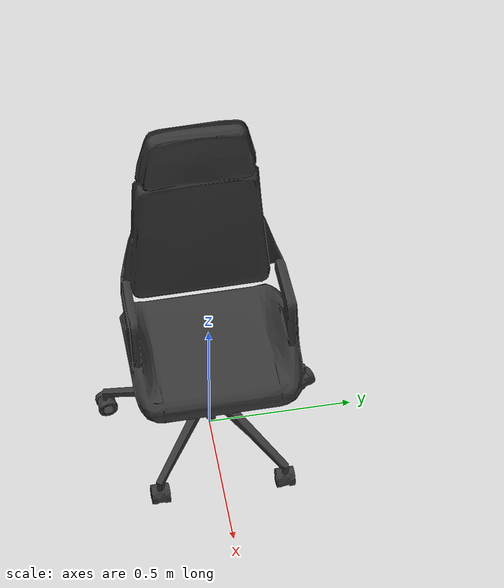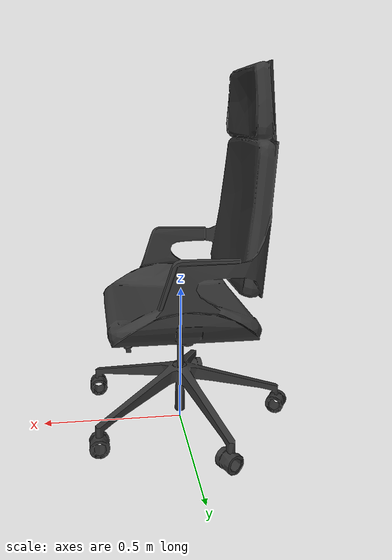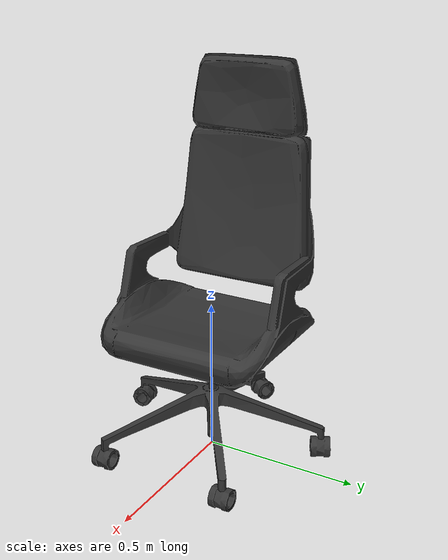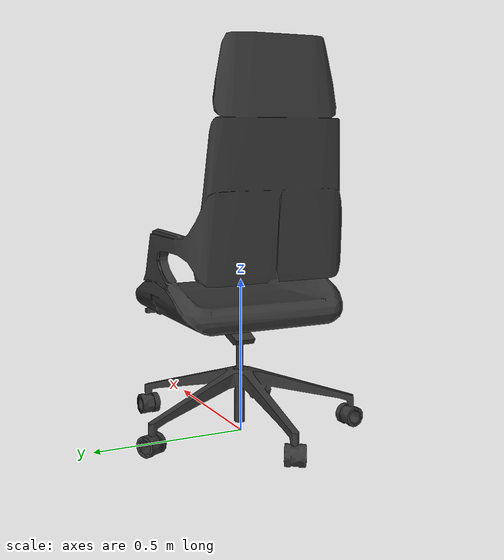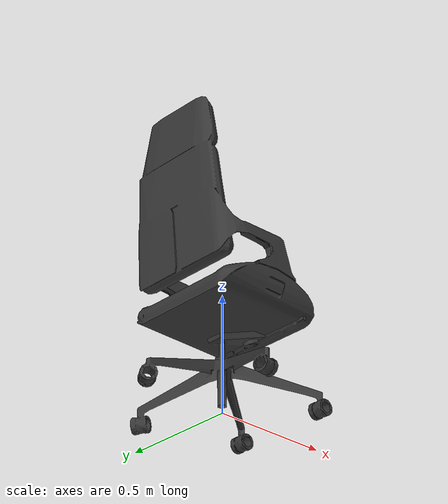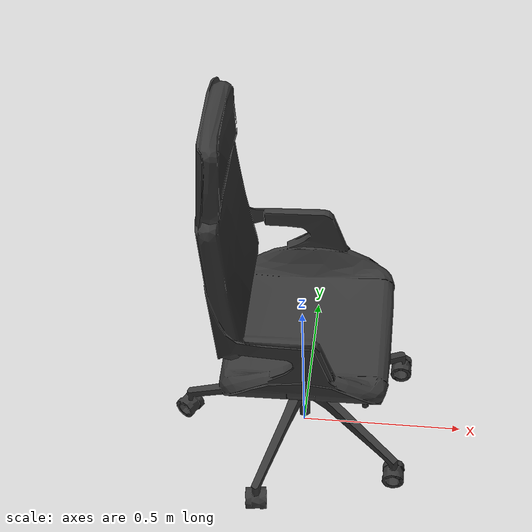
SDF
<?xml version="1.0" ?>
<sdf version="1.6">
    <model name="clf_office_chair">
        <static>true</static>
        <link name="link">
            <collision name="collision">
                <geometry>
                    <mesh>
                        <uri>model://clf_office_chair/meshes/clf_office_chair.dae</uri>
                    </mesh>
                </geometry>
            </collision>
            <visual name="visual">
                <material>
                    <ambient>0.21 0.21 0.21 1.0</ambient>
                    <diffuse>0.21 0.21 0.21 1.0</diffuse>
                    <specular>0 0 0 0</specular>
                    <emissive>0 0 0 1</emissive>
                </material>
                <geometry>
                    <mesh>
                        <uri>model://clf_office_chair/meshes/clf_office_chair.dae</uri>
                    </mesh>
                </geometry>
            </visual>
        </link>
    </model>
</sdf>
